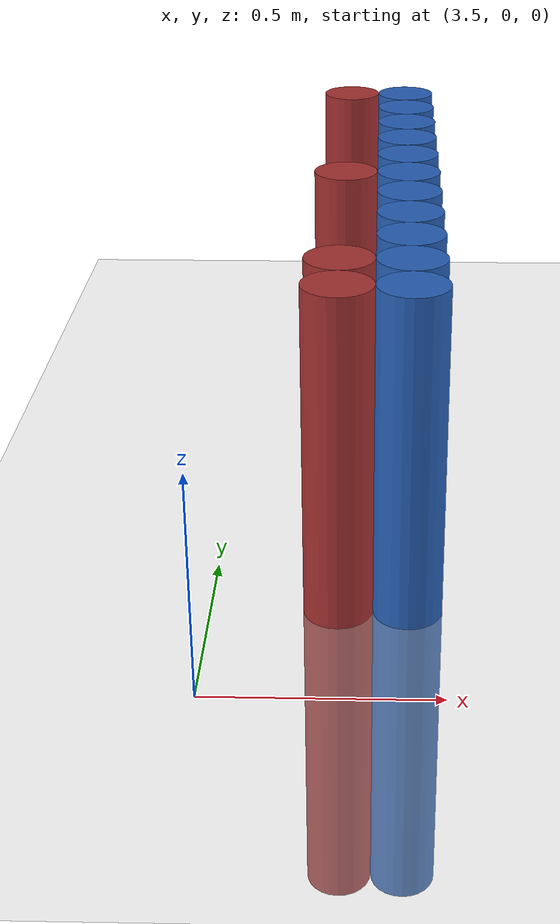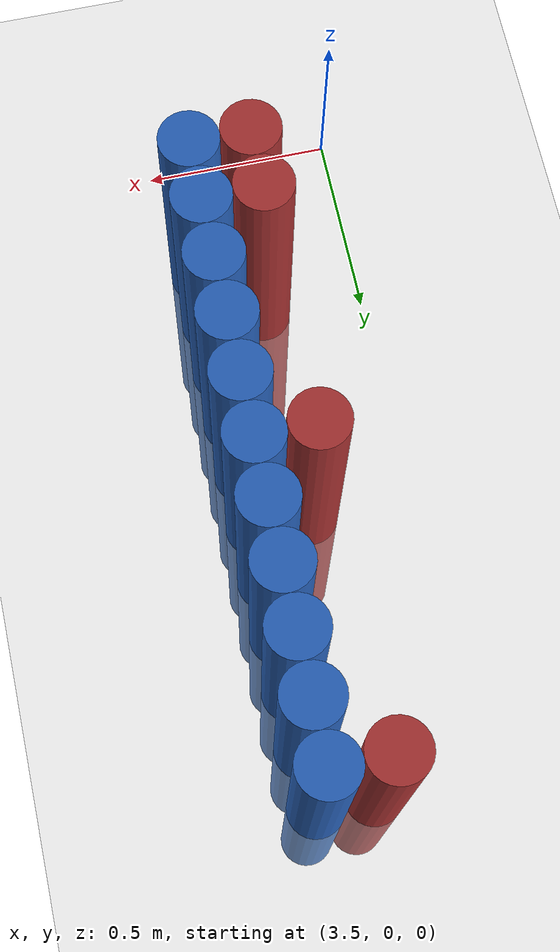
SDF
<sdf version="1.6">
 <world name="default">
  <model name="ground_plane">
   <static>1</static>
   <link name="link">
    <collision name="collision">
     <geometry><plane><normal>0 0 1</normal><size>100 100</size></plane></geometry>
     <surface><friction><ode><mu>100</mu><mu2>50</mu2></ode></friction></surface>
    </collision>
    <visual name="visual">
     <cast_shadows>0</cast_shadows>
     <geometry><plane><normal>0 0 1</normal><size>100 100</size></plane></geometry>
     <material>
      <script><uri>file://media/materials/scripts/gazebo.material</uri><name>Gazebo/Grey</name></script>
     </material>
    </visual>
   </link>
  </model>
  <model name="unit_cylinder_120">
   <static>1</static>
   <pose>3.925000 0.475000 0.000000 0.000000 0.000000 0.000000</pose>
   <link name="link">
    <inertial>
     <mass>1</mass>
     <inertia><ixx>0.145833</ixx><ixy>0</ixy><ixz>0</ixz><iyy>0.145833</iyy><iyz>0</iyz><izz>0.125</izz></inertia>
    </inertial>
    <collision name="collision">
     <geometry><cylinder><radius>0.075000</radius><length>1.5</length></cylinder></geometry>
    </collision>
    <visual name="visual">
     <geometry><cylinder><radius>0.075000</radius><length>1.5</length></cylinder></geometry>
     <material>
      <ambient>0.152000 0.379000 0.720000 1</ambient>
      <diffuse>0.152000 0.379000 0.720000 1</diffuse>
     </material>
     <material>
      <script><name>Gazebo/Grey</name><uri>file://media/materials/scripts/gazebo.material</uri></script>
     </material>
    </visual>
   </link>
  </model>
  <model name="unit_cylinder_122">
   <static>1</static>
   <pose>3.925000 0.625000 0.000000 0.000000 0.000000 0.000000</pose>
   <link name="link">
    <inertial>
     <mass>1</mass>
     <inertia><ixx>0.145833</ixx><ixy>0</ixy><ixz>0</ixz><iyy>0.145833</iyy><iyz>0</iyz><izz>0.125</izz></inertia>
    </inertial>
    <collision name="collision">
     <geometry><cylinder><radius>0.075000</radius><length>1.5</length></cylinder></geometry>
    </collision>
    <visual name="visual">
     <geometry><cylinder><radius>0.075000</radius><length>1.5</length></cylinder></geometry>
     <material>
      <ambient>0.152000 0.379000 0.720000 1</ambient>
      <diffuse>0.152000 0.379000 0.720000 1</diffuse>
     </material>
     <material>
      <script><name>Gazebo/Grey</name><uri>file://media/materials/scripts/gazebo.material</uri></script>
     </material>
    </visual>
   </link>
  </model>
  <model name="unit_cylinder_124">
   <static>1</static>
   <pose>3.925000 0.775000 0.000000 0.000000 0.000000 0.000000</pose>
   <link name="link">
    <inertial>
     <mass>1</mass>
     <inertia><ixx>0.145833</ixx><ixy>0</ixy><ixz>0</ixz><iyy>0.145833</iyy><iyz>0</iyz><izz>0.125</izz></inertia>
    </inertial>
    <collision name="collision">
     <geometry><cylinder><radius>0.075000</radius><length>1.5</length></cylinder></geometry>
    </collision>
    <visual name="visual">
     <geometry><cylinder><radius>0.075000</radius><length>1.5</length></cylinder></geometry>
     <material>
      <ambient>0.152000 0.379000 0.720000 1</ambient>
      <diffuse>0.152000 0.379000 0.720000 1</diffuse>
     </material>
     <material>
      <script><name>Gazebo/Grey</name><uri>file://media/materials/scripts/gazebo.material</uri></script>
     </material>
    </visual>
   </link>
  </model>
  <model name="unit_cylinder_126">
   <static>1</static>
   <pose>3.925000 0.925000 0.000000 0.000000 0.000000 0.000000</pose>
   <link name="link">
    <inertial>
     <mass>1</mass>
     <inertia><ixx>0.145833</ixx><ixy>0</ixy><ixz>0</ixz><iyy>0.145833</iyy><iyz>0</iyz><izz>0.125</izz></inertia>
    </inertial>
    <collision name="collision">
     <geometry><cylinder><radius>0.075000</radius><length>1.5</length></cylinder></geometry>
    </collision>
    <visual name="visual">
     <geometry><cylinder><radius>0.075000</radius><length>1.5</length></cylinder></geometry>
     <material>
      <ambient>0.152000 0.379000 0.720000 1</ambient>
      <diffuse>0.152000 0.379000 0.720000 1</diffuse>
     </material>
     <material>
      <script><name>Gazebo/Grey</name><uri>file://media/materials/scripts/gazebo.material</uri></script>
     </material>
    </visual>
   </link>
  </model>
  <model name="unit_cylinder_128">
   <static>1</static>
   <pose>3.925000 1.075000 0.000000 0.000000 0.000000 0.000000</pose>
   <link name="link">
    <inertial>
     <mass>1</mass>
     <inertia><ixx>0.145833</ixx><ixy>0</ixy><ixz>0</ixz><iyy>0.145833</iyy><iyz>0</iyz><izz>0.125</izz></inertia>
    </inertial>
    <collision name="collision">
     <geometry><cylinder><radius>0.075000</radius><length>1.5</length></cylinder></geometry>
    </collision>
    <visual name="visual">
     <geometry><cylinder><radius>0.075000</radius><length>1.5</length></cylinder></geometry>
     <material>
      <ambient>0.152000 0.379000 0.720000 1</ambient>
      <diffuse>0.152000 0.379000 0.720000 1</diffuse>
     </material>
     <material>
      <script><name>Gazebo/Grey</name><uri>file://media/materials/scripts/gazebo.material</uri></script>
     </material>
    </visual>
   </link>
  </model>
  <model name="unit_cylinder_130">
   <static>1</static>
   <pose>3.925000 1.225000 0.000000 0.000000 0.000000 0.000000</pose>
   <link name="link">
    <inertial>
     <mass>1</mass>
     <inertia><ixx>0.145833</ixx><ixy>0</ixy><ixz>0</ixz><iyy>0.145833</iyy><iyz>0</iyz><izz>0.125</izz></inertia>
    </inertial>
    <collision name="collision">
     <geometry><cylinder><radius>0.075000</radius><length>1.5</length></cylinder></geometry>
    </collision>
    <visual name="visual">
     <geometry><cylinder><radius>0.075000</radius><length>1.5</length></cylinder></geometry>
     <material>
      <ambient>0.152000 0.379000 0.720000 1</ambient>
      <diffuse>0.152000 0.379000 0.720000 1</diffuse>
     </material>
     <material>
      <script><name>Gazebo/Grey</name><uri>file://media/materials/scripts/gazebo.material</uri></script>
     </material>
    </visual>
   </link>
  </model>
  <model name="unit_cylinder_132">
   <static>1</static>
   <pose>3.925000 1.375000 0.000000 0.000000 0.000000 0.000000</pose>
   <link name="link">
    <inertial>
     <mass>1</mass>
     <inertia><ixx>0.145833</ixx><ixy>0</ixy><ixz>0</ixz><iyy>0.145833</iyy><iyz>0</iyz><izz>0.125</izz></inertia>
    </inertial>
    <collision name="collision">
     <geometry><cylinder><radius>0.075000</radius><length>1.5</length></cylinder></geometry>
    </collision>
    <visual name="visual">
     <geometry><cylinder><radius>0.075000</radius><length>1.5</length></cylinder></geometry>
     <material>
      <ambient>0.152000 0.379000 0.720000 1</ambient>
      <diffuse>0.152000 0.379000 0.720000 1</diffuse>
     </material>
     <material>
      <script><name>Gazebo/Grey</name><uri>file://media/materials/scripts/gazebo.material</uri></script>
     </material>
    </visual>
   </link>
  </model>
  <model name="unit_cylinder_134">
   <static>1</static>
   <pose>3.925000 1.525000 0.000000 0.000000 0.000000 0.000000</pose>
   <link name="link">
    <inertial>
     <mass>1</mass>
     <inertia><ixx>0.145833</ixx><ixy>0</ixy><ixz>0</ixz><iyy>0.145833</iyy><iyz>0</iyz><izz>0.125</izz></inertia>
    </inertial>
    <collision name="collision">
     <geometry><cylinder><radius>0.075000</radius><length>1.5</length></cylinder></geometry>
    </collision>
    <visual name="visual">
     <geometry><cylinder><radius>0.075000</radius><length>1.5</length></cylinder></geometry>
     <material>
      <ambient>0.152000 0.379000 0.720000 1</ambient>
      <diffuse>0.152000 0.379000 0.720000 1</diffuse>
     </material>
     <material>
      <script><name>Gazebo/Grey</name><uri>file://media/materials/scripts/gazebo.material</uri></script>
     </material>
    </visual>
   </link>
  </model>
  <model name="unit_cylinder_136">
   <static>1</static>
   <pose>3.925000 1.675000 0.000000 0.000000 0.000000 0.000000</pose>
   <link name="link">
    <inertial>
     <mass>1</mass>
     <inertia><ixx>0.145833</ixx><ixy>0</ixy><ixz>0</ixz><iyy>0.145833</iyy><iyz>0</iyz><izz>0.125</izz></inertia>
    </inertial>
    <collision name="collision">
     <geometry><cylinder><radius>0.075000</radius><length>1.5</length></cylinder></geometry>
    </collision>
    <visual name="visual">
     <geometry><cylinder><radius>0.075000</radius><length>1.5</length></cylinder></geometry>
     <material>
      <ambient>0.152000 0.379000 0.720000 1</ambient>
      <diffuse>0.152000 0.379000 0.720000 1</diffuse>
     </material>
     <material>
      <script><name>Gazebo/Grey</name><uri>file://media/materials/scripts/gazebo.material</uri></script>
     </material>
    </visual>
   </link>
  </model>
  <model name="unit_cylinder_138">
   <static>1</static>
   <pose>3.925000 1.825000 0.000000 0.000000 0.000000 0.000000</pose>
   <link name="link">
    <inertial>
     <mass>1</mass>
     <inertia><ixx>0.145833</ixx><ixy>0</ixy><ixz>0</ixz><iyy>0.145833</iyy><iyz>0</iyz><izz>0.125</izz></inertia>
    </inertial>
    <collision name="collision">
     <geometry><cylinder><radius>0.075000</radius><length>1.5</length></cylinder></geometry>
    </collision>
    <visual name="visual">
     <geometry><cylinder><radius>0.075000</radius><length>1.5</length></cylinder></geometry>
     <material>
      <ambient>0.152000 0.379000 0.720000 1</ambient>
      <diffuse>0.152000 0.379000 0.720000 1</diffuse>
     </material>
     <material>
      <script><name>Gazebo/Grey</name><uri>file://media/materials/scripts/gazebo.material</uri></script>
     </material>
    </visual>
   </link>
  </model>
  <model name="unit_cylinder_385">
   <static>1</static>
   <pose>3.775000 0.325000 0.000000 0.000000 0.000000 0.000000</pose>
   <link name="link">
    <inertial>
     <mass>1</mass>
     <inertia><ixx>0.145833</ixx><ixy>0</ixy><ixz>0</ixz><iyy>0.145833</iyy><iyz>0</iyz><izz>0.125</izz></inertia>
    </inertial>
    <collision name="collision">
     <geometry><cylinder><radius>0.075000</radius><length>1.5</length></cylinder></geometry>
    </collision>
    <visual name="visual">
     <geometry><cylinder><radius>0.075000</radius><length>1.5</length></cylinder></geometry>
     <material>
      <ambient>0.648000 0.192000 0.192000 1</ambient>
      <diffuse>0.648000 0.192000 0.192000 1</diffuse>
     </material>
     <material>
      <script><name>Gazebo/Grey</name><uri>file://media/materials/scripts/gazebo.material</uri></script>
     </material>
    </visual>
   </link>
  </model>
  <model name="unit_cylinder_386">
   <static>1</static>
   <pose>3.775000 0.475000 0.000000 0.000000 0.000000 0.000000</pose>
   <link name="link">
    <inertial>
     <mass>1</mass>
     <inertia><ixx>0.145833</ixx><ixy>0</ixy><ixz>0</ixz><iyy>0.145833</iyy><iyz>0</iyz><izz>0.125</izz></inertia>
    </inertial>
    <collision name="collision">
     <geometry><cylinder><radius>0.075000</radius><length>1.5</length></cylinder></geometry>
    </collision>
    <visual name="visual">
     <geometry><cylinder><radius>0.075000</radius><length>1.5</length></cylinder></geometry>
     <material>
      <ambient>0.648000 0.192000 0.192000 1</ambient>
      <diffuse>0.648000 0.192000 0.192000 1</diffuse>
     </material>
     <material>
      <script><name>Gazebo/Grey</name><uri>file://media/materials/scripts/gazebo.material</uri></script>
     </material>
    </visual>
   </link>
  </model>
  <model name="unit_cylinder_387">
   <static>1</static>
   <pose>3.775000 1.075000 0.000000 0.000000 0.000000 0.000000</pose>
   <link name="link">
    <inertial>
     <mass>1</mass>
     <inertia><ixx>0.145833</ixx><ixy>0</ixy><ixz>0</ixz><iyy>0.145833</iyy><iyz>0</iyz><izz>0.125</izz></inertia>
    </inertial>
    <collision name="collision">
     <geometry><cylinder><radius>0.075000</radius><length>1.5</length></cylinder></geometry>
    </collision>
    <visual name="visual">
     <geometry><cylinder><radius>0.075000</radius><length>1.5</length></cylinder></geometry>
     <material>
      <ambient>0.648000 0.192000 0.192000 1</ambient>
      <diffuse>0.648000 0.192000 0.192000 1</diffuse>
     </material>
     <material>
      <script><name>Gazebo/Grey</name><uri>file://media/materials/scripts/gazebo.material</uri></script>
     </material>
    </visual>
   </link>
  </model>
  <model name="unit_cylinder_388">
   <static>1</static>
   <pose>3.775000 1.825000 0.000000 0.000000 0.000000 0.000000</pose>
   <link name="link">
    <inertial>
     <mass>1</mass>
     <inertia><ixx>0.145833</ixx><ixy>0</ixy><ixz>0</ixz><iyy>0.145833</iyy><iyz>0</iyz><izz>0.125</izz></inertia>
    </inertial>
    <collision name="collision">
     <geometry><cylinder><radius>0.075000</radius><length>1.5</length></cylinder></geometry>
    </collision>
    <visual name="visual">
     <geometry><cylinder><radius>0.075000</radius><length>1.5</length></cylinder></geometry>
     <material>
      <ambient>0.648000 0.192000 0.192000 1</ambient>
      <diffuse>0.648000 0.192000 0.192000 1</diffuse>
     </material>
     <material>
      <script><name>Gazebo/Grey</name><uri>file://media/materials/scripts/gazebo.material</uri></script>
     </material>
    </visual>
   </link>
  </model>
  <model name="unit_cylinder_414">
   <static>1</static>
   <pose>3.925000 0.325000 0.000000 0.000000 0.000000 0.000000</pose>
   <link name="link">
    <inertial>
     <mass>1</mass>
     <inertia><ixx>0.145833</ixx><ixy>0</ixy><ixz>0</ixz><iyy>0.145833</iyy><iyz>0</iyz><izz>0.125</izz></inertia>
    </inertial>
    <collision name="collision">
     <geometry><cylinder><radius>0.075000</radius><length>1.5</length></cylinder></geometry>
    </collision>
    <visual name="visual">
     <geometry><cylinder><radius>0.075000</radius><length>1.5</length></cylinder></geometry>
     <material>
      <ambient>0.152000 0.379000 0.720000 1</ambient>
      <diffuse>0.152000 0.379000 0.720000 1</diffuse>
     </material>
     <material>
      <script><name>Gazebo/Grey</name><uri>file://media/materials/scripts/gazebo.material</uri></script>
     </material>
    </visual>
   </link>
  </model>
  <model name="unit_cylinder_415">
   <static>1</static>
   <pose>3.925000 0.475000 0.000000 0.000000 0.000000 0.000000</pose>
   <link name="link">
    <inertial>
     <mass>1</mass>
     <inertia><ixx>0.145833</ixx><ixy>0</ixy><ixz>0</ixz><iyy>0.145833</iyy><iyz>0</iyz><izz>0.125</izz></inertia>
    </inertial>
    <collision name="collision">
     <geometry><cylinder><radius>0.075000</radius><length>1.5</length></cylinder></geometry>
    </collision>
    <visual name="visual">
     <geometry><cylinder><radius>0.075000</radius><length>1.5</length></cylinder></geometry>
     <material>
      <ambient>0.152000 0.379000 0.720000 1</ambient>
      <diffuse>0.152000 0.379000 0.720000 1</diffuse>
     </material>
     <material>
      <script><name>Gazebo/Grey</name><uri>file://media/materials/scripts/gazebo.material</uri></script>
     </material>
    </visual>
   </link>
  </model>
  <model name="unit_cylinder_416">
   <static>1</static>
   <pose>3.925000 0.625000 0.000000 0.000000 0.000000 0.000000</pose>
   <link name="link">
    <inertial>
     <mass>1</mass>
     <inertia><ixx>0.145833</ixx><ixy>0</ixy><ixz>0</ixz><iyy>0.145833</iyy><iyz>0</iyz><izz>0.125</izz></inertia>
    </inertial>
    <collision name="collision">
     <geometry><cylinder><radius>0.075000</radius><length>1.5</length></cylinder></geometry>
    </collision>
    <visual name="visual">
     <geometry><cylinder><radius>0.075000</radius><length>1.5</length></cylinder></geometry>
     <material>
      <ambient>0.152000 0.379000 0.720000 1</ambient>
      <diffuse>0.152000 0.379000 0.720000 1</diffuse>
     </material>
     <material>
      <script><name>Gazebo/Grey</name><uri>file://media/materials/scripts/gazebo.material</uri></script>
     </material>
    </visual>
   </link>
  </model>
  <model name="unit_cylinder_417">
   <static>1</static>
   <pose>3.925000 0.775000 0.000000 0.000000 0.000000 0.000000</pose>
   <link name="link">
    <inertial>
     <mass>1</mass>
     <inertia><ixx>0.145833</ixx><ixy>0</ixy><ixz>0</ixz><iyy>0.145833</iyy><iyz>0</iyz><izz>0.125</izz></inertia>
    </inertial>
    <collision name="collision">
     <geometry><cylinder><radius>0.075000</radius><length>1.5</length></cylinder></geometry>
    </collision>
    <visual name="visual">
     <geometry><cylinder><radius>0.075000</radius><length>1.5</length></cylinder></geometry>
     <material>
      <ambient>0.152000 0.379000 0.720000 1</ambient>
      <diffuse>0.152000 0.379000 0.720000 1</diffuse>
     </material>
     <material>
      <script><name>Gazebo/Grey</name><uri>file://media/materials/scripts/gazebo.material</uri></script>
     </material>
    </visual>
   </link>
  </model>
  <model name="unit_cylinder_418">
   <static>1</static>
   <pose>3.925000 0.925000 0.000000 0.000000 0.000000 0.000000</pose>
   <link name="link">
    <inertial>
     <mass>1</mass>
     <inertia><ixx>0.145833</ixx><ixy>0</ixy><ixz>0</ixz><iyy>0.145833</iyy><iyz>0</iyz><izz>0.125</izz></inertia>
    </inertial>
    <collision name="collision">
     <geometry><cylinder><radius>0.075000</radius><length>1.5</length></cylinder></geometry>
    </collision>
    <visual name="visual">
     <geometry><cylinder><radius>0.075000</radius><length>1.5</length></cylinder></geometry>
     <material>
      <ambient>0.152000 0.379000 0.720000 1</ambient>
      <diffuse>0.152000 0.379000 0.720000 1</diffuse>
     </material>
     <material>
      <script><name>Gazebo/Grey</name><uri>file://media/materials/scripts/gazebo.material</uri></script>
     </material>
    </visual>
   </link>
  </model>
  <model name="unit_cylinder_419">
   <static>1</static>
   <pose>3.925000 1.075000 0.000000 0.000000 0.000000 0.000000</pose>
   <link name="link">
    <inertial>
     <mass>1</mass>
     <inertia><ixx>0.145833</ixx><ixy>0</ixy><ixz>0</ixz><iyy>0.145833</iyy><iyz>0</iyz><izz>0.125</izz></inertia>
    </inertial>
    <collision name="collision">
     <geometry><cylinder><radius>0.075000</radius><length>1.5</length></cylinder></geometry>
    </collision>
    <visual name="visual">
     <geometry><cylinder><radius>0.075000</radius><length>1.5</length></cylinder></geometry>
     <material>
      <ambient>0.152000 0.379000 0.720000 1</ambient>
      <diffuse>0.152000 0.379000 0.720000 1</diffuse>
     </material>
     <material>
      <script><name>Gazebo/Grey</name><uri>file://media/materials/scripts/gazebo.material</uri></script>
     </material>
    </visual>
   </link>
  </model>
  <model name="unit_cylinder_420">
   <static>1</static>
   <pose>3.925000 1.225000 0.000000 0.000000 0.000000 0.000000</pose>
   <link name="link">
    <inertial>
     <mass>1</mass>
     <inertia><ixx>0.145833</ixx><ixy>0</ixy><ixz>0</ixz><iyy>0.145833</iyy><iyz>0</iyz><izz>0.125</izz></inertia>
    </inertial>
    <collision name="collision">
     <geometry><cylinder><radius>0.075000</radius><length>1.5</length></cylinder></geometry>
    </collision>
    <visual name="visual">
     <geometry><cylinder><radius>0.075000</radius><length>1.5</length></cylinder></geometry>
     <material>
      <ambient>0.152000 0.379000 0.720000 1</ambient>
      <diffuse>0.152000 0.379000 0.720000 1</diffuse>
     </material>
     <material>
      <script><name>Gazebo/Grey</name><uri>file://media/materials/scripts/gazebo.material</uri></script>
     </material>
    </visual>
   </link>
  </model>
  <model name="unit_cylinder_421">
   <static>1</static>
   <pose>3.925000 1.375000 0.000000 0.000000 0.000000 0.000000</pose>
   <link name="link">
    <inertial>
     <mass>1</mass>
     <inertia><ixx>0.145833</ixx><ixy>0</ixy><ixz>0</ixz><iyy>0.145833</iyy><iyz>0</iyz><izz>0.125</izz></inertia>
    </inertial>
    <collision name="collision">
     <geometry><cylinder><radius>0.075000</radius><length>1.5</length></cylinder></geometry>
    </collision>
    <visual name="visual">
     <geometry><cylinder><radius>0.075000</radius><length>1.5</length></cylinder></geometry>
     <material>
      <ambient>0.152000 0.379000 0.720000 1</ambient>
      <diffuse>0.152000 0.379000 0.720000 1</diffuse>
     </material>
     <material>
      <script><name>Gazebo/Grey</name><uri>file://media/materials/scripts/gazebo.material</uri></script>
     </material>
    </visual>
   </link>
  </model>
  <model name="unit_cylinder_422">
   <static>1</static>
   <pose>3.925000 1.525000 0.000000 0.000000 0.000000 0.000000</pose>
   <link name="link">
    <inertial>
     <mass>1</mass>
     <inertia><ixx>0.145833</ixx><ixy>0</ixy><ixz>0</ixz><iyy>0.145833</iyy><iyz>0</iyz><izz>0.125</izz></inertia>
    </inertial>
    <collision name="collision">
     <geometry><cylinder><radius>0.075000</radius><length>1.5</length></cylinder></geometry>
    </collision>
    <visual name="visual">
     <geometry><cylinder><radius>0.075000</radius><length>1.5</length></cylinder></geometry>
     <material>
      <ambient>0.152000 0.379000 0.720000 1</ambient>
      <diffuse>0.152000 0.379000 0.720000 1</diffuse>
     </material>
     <material>
      <script><name>Gazebo/Grey</name><uri>file://media/materials/scripts/gazebo.material</uri></script>
     </material>
    </visual>
   </link>
  </model>
  <model name="unit_cylinder_423">
   <static>1</static>
   <pose>3.925000 1.675000 0.000000 0.000000 0.000000 0.000000</pose>
   <link name="link">
    <inertial>
     <mass>1</mass>
     <inertia><ixx>0.145833</ixx><ixy>0</ixy><ixz>0</ixz><iyy>0.145833</iyy><iyz>0</iyz><izz>0.125</izz></inertia>
    </inertial>
    <collision name="collision">
     <geometry><cylinder><radius>0.075000</radius><length>1.5</length></cylinder></geometry>
    </collision>
    <visual name="visual">
     <geometry><cylinder><radius>0.075000</radius><length>1.5</length></cylinder></geometry>
     <material>
      <ambient>0.152000 0.379000 0.720000 1</ambient>
      <diffuse>0.152000 0.379000 0.720000 1</diffuse>
     </material>
     <material>
      <script><name>Gazebo/Grey</name><uri>file://media/materials/scripts/gazebo.material</uri></script>
     </material>
    </visual>
   </link>
  </model>
 </world>
</sdf>
